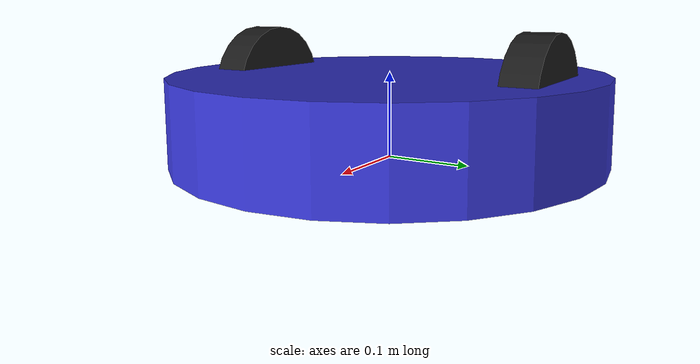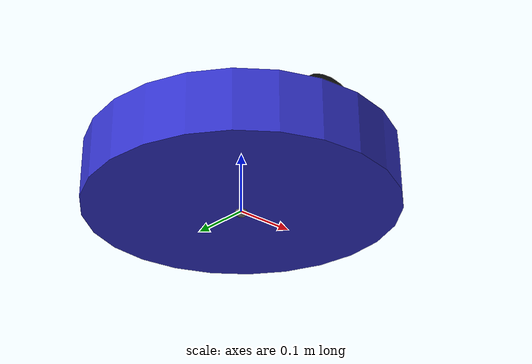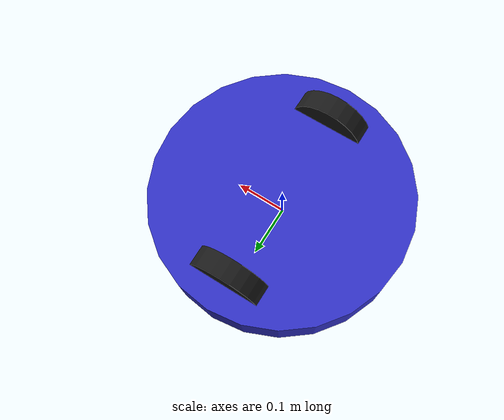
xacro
<?xml version="1.0"?>
<robot xmlns:xacro="http://www.ros.org/wiki/xacro" name="warehouse_robot">

  <xacro:arg name="lidar_samples" default="1080"/>
  <xacro:arg name="lidar_update_rate" default="10"/>
  <xacro:arg name="camera_width" default="640"/>
  <xacro:arg name="camera_height" default="480"/>
  <xacro:arg name="camera_update_rate" default="15"/>
  <xacro:arg name="imu_update_rate" default="100"/>

  <!-- ========== Materials ========== -->
  <material name="black">
    <color rgba="0.1 0.1 0.1 1.0"/>
  </material>
  <material name="gray">
    <color rgba="0.4 0.4 0.4 1.0"/>
  </material>
  <material name="blue">
    <color rgba="0.2 0.2 0.8 1.0"/>
  </material>
  <material name="white">
    <color rgba="1.0 1.0 1.0 1.0"/>
  </material>

  <!-- ========== Inertia macros ========== -->
  <xacro:macro name="cylinder_inertial" params="mass radius length xyz:=0">
    <inertial>
      <mass value="${mass}"/>
      <origin xyz="${xyz}" rpy="0 0 0"/>
      <inertia
        ixx="${mass*(3*radius*radius + length*length)/12}"
        iyy="${mass*(3*radius*radius + length*length)/12}"
        izz="${mass*radius*radius/2}"
        ixy="0" ixz="0" iyz="0"/>
    </inertial>
  </xacro:macro>

  <xacro:macro name="box_inertial" params="mass x y z xyz:=0">
    <inertial>
      <mass value="${mass}"/>
      <origin xyz="${xyz}" rpy="0 0 0"/>
      <inertia
        ixx="${mass*(y*y + z*z)/12}"
        iyy="${mass*(x*x + z*z)/12}"
        izz="${mass*(x*x + y*y)/12}"
        ixy="0" ixz="0" iyz="0"/>
    </inertial>
  </xacro:macro>

  <!-- ========== base_footprint ========== -->
  <link name="base_footprint">
    <visual>
      <geometry><sphere radius="0.01"/></geometry>
      <material name="gray"/>
    </visual>
  </link>

  <joint name="base_footprint_joint" type="fixed">
    <parent link="base_footprint"/>
    <child link="base_link"/>
    <origin xyz="0 0 0.05" rpy="0 0 0"/>
  </joint>

  <!-- ========== base_link (chassis) ========== -->
  <link name="base_link">
    <visual>
      <origin xyz="0 0 0.0" rpy="0 0 0"/>
      <geometry>
        <cylinder radius="0.25" length="0.1"/>
      </geometry>
      <material name="blue"/>
    </visual>
    <collision>
      <origin xyz="0 0 0.0" rpy="0 0 0"/>
      <geometry>
        <cylinder radius="0.25" length="0.1"/>
      </geometry>
    </collision>
    <xacro:cylinder_inertial mass="15.0" radius="0.25" length="0.1" xyz="0 0 0"/>
  </link>

  <!-- ========== 2D LiDAR (Hokuyo URG-04LX) ========== -->
  <link name="laser_link"/>

  <joint name="laser_joint" type="fixed">
    <parent link="base_link"/>
    <child link="laser_link"/>
    <origin xyz="0.1 0 0.15" rpy="0 0 0"/>
  </joint>

  <gazebo reference="laser_link">
    <sensor type="ray" name="hokuyo_laser">
      <pose>0 0 0 0 0 0</pose>
      <visualize>false</visualize>
      <update_rate>$(arg lidar_update_rate)</update_rate>
      <ray>
        <scan>
          <horizontal>
            <samples>$(arg lidar_samples)</samples>
            <resolution>1</resolution>
            <min_angle>-2.356194</min_angle>
            <max_angle>2.356194</max_angle><!-- +135° = 270° total -->
          </horizontal>
        </scan>
        <range>
          <min>0.1</min>
          <max>10.0</max>
          <resolution>0.01</resolution>
        </range>
        <noise>
          <type>gaussian</type>
          <mean>0.0</mean>
          <stddev>0.02</stddev>
        </noise>
      </ray>
      <plugin name="gazebo_ros_hokuyo_laser" filename="libgazebo_ros_ray_sensor.so">
        <ros>
          <namespace>/</namespace>
          <argument>~/out:=scan</argument>
        </ros>
        <output_type>sensor_msgs/LaserScan</output_type>
      </plugin>
    </sensor>
  </gazebo>

  <!-- ========== RGB-D Camera (Realsense D435) ========== -->
  <link name="camera_rgbd_link"/>

  <joint name="camera_rgbd_joint" type="fixed">
    <parent link="base_link"/>
    <child link="camera_rgbd_link"/>
    <origin xyz="0.18 0 0.55" rpy="0 0.1 0"/>
  </joint>

  <!-- RGB camera -->
  <gazebo reference="camera_rgbd_link">
    <sensor type="camera" name="realsense_rgb">
      <update_rate>$(arg camera_update_rate)</update_rate>
      <camera>
        <horizontal_fov>1.518436</horizontal_fov>
        <image>
          <width>$(arg camera_width)</width>
          <height>$(arg camera_height)</height>
          <format>R8G8B8</format>
        </image>
        <clip><near>0.1</near><far>10.0</far></clip>
      </camera>
      <plugin name="gazebo_ros_rgb" filename="libgazebo_ros_camera.so">
        <ros><namespace>/camera/rgb</namespace></ros>
        <camera_name>realsense_rgb</camera_name>
        <frame_name>camera_rgbd_link</frame_name>
      </plugin>
    </sensor>
  </gazebo>

  <!-- Depth camera (same link) -->
  <gazebo reference="camera_rgbd_link">
    <sensor type="depth" name="realsense_depth">
      <update_rate>$(arg camera_update_rate)</update_rate>
      <camera>
        <horizontal_fov>1.518436</horizontal_fov>
        <image>
          <width>$(arg camera_width)</width>
          <height>$(arg camera_height)</height>
          <format>R8G8B8</format>
        </image>
        <clip><near>0.1</near><far>10.0</far></clip>
      </camera>
      <plugin name="gazebo_ros_depth" filename="libgazebo_ros_camera.so">
        <ros><namespace>/camera/depth</namespace></ros>
        <camera_name>realsense_depth</camera_name>
        <frame_name>camera_rgbd_link</frame_name>
      </plugin>
    </sensor>
  </gazebo>

  <!-- ========== IMU ========== -->
  <link name="imu_link"/>

  <joint name="imu_joint" type="fixed">
    <parent link="base_link"/>
    <child link="imu_link"/>
    <origin xyz="0 0 0" rpy="0 0 0"/>
  </joint>

  <gazebo reference="imu_link">
    <gravity>true</gravity>
    <sensor type="imu" name="imu_sensor">
      <always_on>true</always_on>
      <update_rate>$(arg imu_update_rate)</update_rate>
      <visualize>false</visualize>
      <imu>
        <angular_velocity>
          <x><noise type="gaussian" mean="0.0" stddev="0.0005"/></x>
          <y><noise type="gaussian" mean="0.0" stddev="0.0005"/></y>
          <z><noise type="gaussian" mean="0.0" stddev="0.0005"/></z>
        </angular_velocity>
        <linear_acceleration>
          <x><noise type="gaussian" mean="0.0" stddev="0.0001"/></x>
          <y><noise type="gaussian" mean="0.0" stddev="0.0001"/></y>
          <z><noise type="gaussian" mean="0.0" stddev="0.0001"/></z>
        </linear_acceleration>
      </imu>
      <plugin name="gazebo_ros_imu" filename="libgazebo_ros_imu_sensor.so">
        <ros>
          <namespace>/</namespace>
          <argument>~/out:=imu</argument>
        </ros>
      </plugin>
    </sensor>
  </gazebo>

  <!-- ========== Mono camera (reserved for AprilTag extension) ========== -->
  <link name="camera_mono_link"/>

  <joint name="camera_mono_joint" type="fixed">
    <parent link="base_link"/>
    <child link="camera_mono_link"/>
    <origin xyz="0.18 0 0.65" rpy="0 0.15 0"/>
  </joint>

  <!-- Mono camera sensor: plugin disabled by default, activate for AprilTag -->

  <!-- ========== Wheels ========== -->
  <link name="left_wheel_link">
    <visual>
      <origin xyz="0 0 0" rpy="1.5708 0 0"/>
      <geometry>
        <cylinder radius="0.075" length="0.04"/>
      </geometry>
      <material name="black"/>
    </visual>
    <collision>
      <origin xyz="0 0 0" rpy="1.5708 0 0"/>
      <geometry>
        <cylinder radius="0.075" length="0.04"/>
      </geometry>
    </collision>
    <xacro:cylinder_inertial mass="0.5" radius="0.075" length="0.04" xyz="0 0 0"/>
  </link>

  <joint name="left_wheel_joint" type="continuous">
    <parent link="base_link"/>
    <child link="left_wheel_link"/>
    <origin xyz="0 0.18 0.025" rpy="0 0 0"/>
    <axis xyz="0 1 0"/>
  </joint>

  <link name="right_wheel_link">
    <visual>
      <origin xyz="0 0 0" rpy="1.5708 0 0"/>
      <geometry>
        <cylinder radius="0.075" length="0.04"/>
      </geometry>
      <material name="black"/>
    </visual>
    <collision>
      <origin xyz="0 0 0" rpy="1.5708 0 0"/>
      <geometry>
        <cylinder radius="0.075" length="0.04"/>
      </geometry>
    </collision>
    <xacro:cylinder_inertial mass="0.5" radius="0.075" length="0.04" xyz="0 0 0"/>
  </link>

  <joint name="right_wheel_joint" type="continuous">
    <parent link="base_link"/>
    <child link="right_wheel_link"/>
    <origin xyz="0 -0.18 0.025" rpy="0 0 0"/>
    <axis xyz="0 -1 0"/>
  </joint>

  <!-- Caster wheel -->
  <link name="caster_wheel_link">
    <visual>
      <geometry>
        <sphere radius="0.04"/>
      </geometry>
      <material name="gray"/>
    </visual>
    <collision>
      <geometry>
        <sphere radius="0.04"/>
      </geometry>
    </collision>
    <xacro:box_inertial mass="0.1" x="0.01" y="0.01" z="0.01" xyz="0 0 0"/>
  </link>

  <joint name="caster_wheel_joint" type="fixed">
    <parent link="base_link"/>
    <child link="caster_wheel_link"/>
    <origin xyz="-0.2 0 -0.01" rpy="0 0 0"/>
  </joint>

  <!-- ========== Diff Drive Plugin ========== -->
  <gazebo>
    <plugin name="diff_drive_controller" filename="libgazebo_ros_diff_drive.so">
      <ros>
        <namespace>/</namespace>
      </ros>

      <update_rate>50</update_rate>

      <left_joint>left_wheel_joint</left_joint>
      <right_joint>right_wheel_joint</right_joint>

      <wheel_separation>0.36</wheel_separation>
      <wheel_diameter>0.15</wheel_diameter>

      <max_wheel_torque>20.0</max_wheel_torque>
      <max_wheel_acceleration>10.0</max_wheel_acceleration>

      <publish_odom>true</publish_odom>
      <publish_odom_tf>true</publish_odom_tf>
      <publish_wheel_tf>false</publish_wheel_tf>

      <odometry_frame>odom</odometry_frame>
      <robot_base_frame>base_footprint</robot_base_frame>

      <command_topic>cmd_vel</command_topic>
      <odometry_topic>odom</odometry_topic>

      <covariance_x>0.0001</covariance_x>
      <covariance_y>0.0001</covariance_y>
      <covariance_yaw>0.01</covariance_yaw>
    </plugin>
  </gazebo>

</robot>
